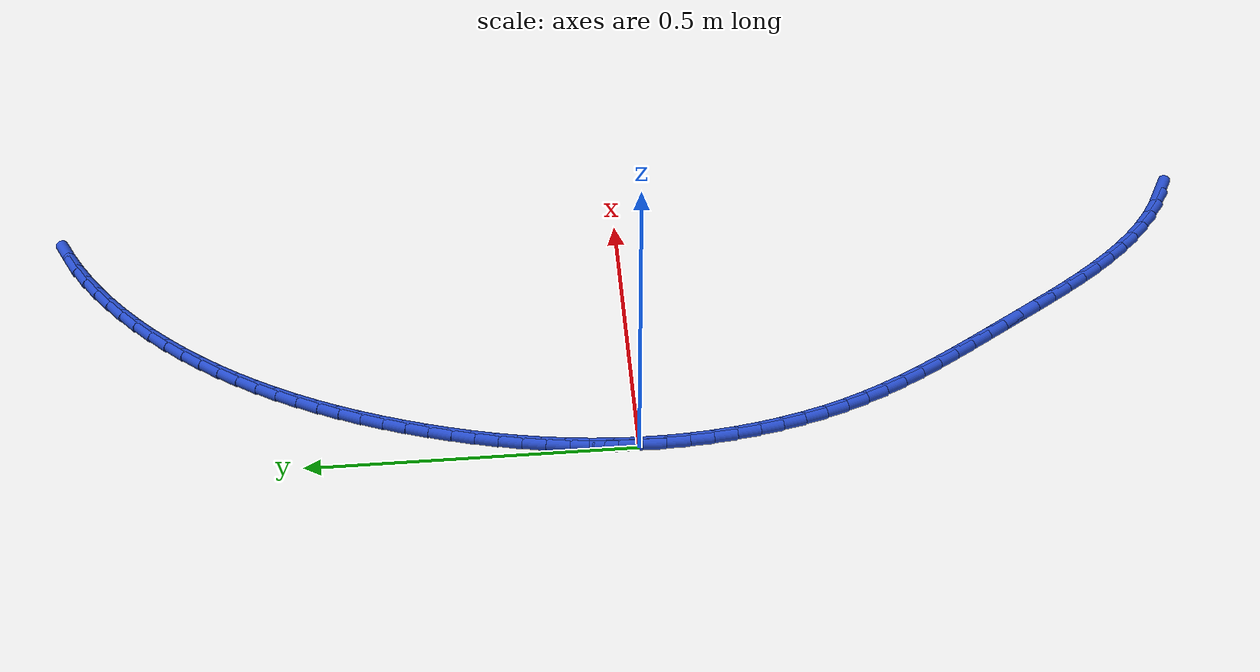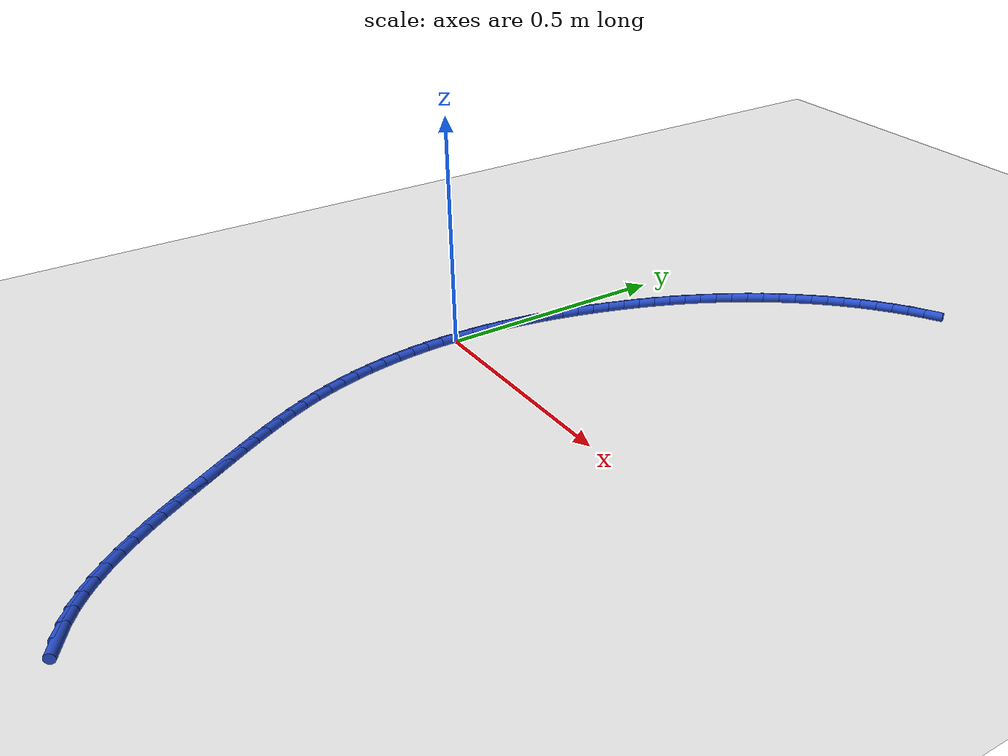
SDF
<sdf version="1.6">
 <world name="default">
  <model name="ground_plane">
   <static>1</static>
   <link name="link">
    <collision name="collision">
     <geometry><plane><normal>0 0 1</normal><size>100 100</size></plane></geometry>
     <surface><friction><ode><mu>100</mu><mu2>50</mu2></ode></friction></surface>
    </collision>
    <visual name="visual">
     <cast_shadows>0</cast_shadows>
     <geometry><plane><normal>0 0 1</normal><size>100 100</size></plane></geometry>
     <material>
      <script><uri>file://media/materials/scripts/gazebo.material</uri><name>Gazebo/WhiteGlow</name></script>
     </material>
    </visual>
   </link>
  </model>
  <model name="line">
   <link name="link_0">
    <pose>-1.734723475976807e-18 -2.7755575615628914e-17 0.01 0 1.57 1.539559376418958</pose>
    <collision name="collision">
     <geometry><cylinder><radius>0.01</radius><length>0.08</length></cylinder></geometry>
    </collision>
    <visual name="visual">
     <material>
      <script><name>Gazebo/Blue</name><uri>file://media/materials/scripts/gazebo.material</uri></script>
     </material>
     <geometry><cylinder><radius>0.01</radius><length>0.08</length></cylinder></geometry>
    </visual>
   </link>
   <link name="link_1">
    <pose>0.0011212247587142708 0.035882505950260844 0.01 0 1.57 1.5037378693080572</pose>
    <collision name="collision">
     <geometry><cylinder><radius>0.01</radius><length>0.08</length></cylinder></geometry>
    </collision>
    <visual name="visual">
     <material>
      <script><name>Gazebo/Blue</name><uri>file://media/materials/scripts/gazebo.material</uri></script>
     </material>
     <geometry><cylinder><radius>0.01</radius><length>0.08</length></cylinder></geometry>
    </visual>
   </link>
   <link name="link_2">
    <pose>0.003522147219864937 0.07163224758675368 0.01 0 1.57 1.4692266333694144</pose>
    <collision name="collision">
     <geometry><cylinder><radius>0.01</radius><length>0.08</length></cylinder></geometry>
    </collision>
    <visual name="visual">
     <material>
      <script><name>Gazebo/Blue</name><uri>file://media/materials/scripts/gazebo.material</uri></script>
     </material>
     <geometry><cylinder><radius>0.01</radius><length>0.08</length></cylinder></geometry>
    </visual>
   </link>
   <link name="link_3">
    <pose>0.007150616097195604 0.10723324807625588 0.01 0 1.57 1.4360542948428303</pose>
    <collision name="collision">
     <geometry><cylinder><radius>0.01</radius><length>0.08</length></cylinder></geometry>
    </collision>
    <visual name="visual">
     <material>
      <script><name>Gazebo/Blue</name><uri>file://media/materials/scripts/gazebo.material</uri></script>
     </material>
     <geometry><cylinder><radius>0.01</radius><length>0.08</length></cylinder></geometry>
    </visual>
   </link>
   <link name="link_4">
    <pose>0.011954480104449869 0.14266953058554477 0.01 0 1.57 1.4042356273516454</pose>
    <collision name="collision">
     <geometry><cylinder><radius>0.01</radius><length>0.08</length></cylinder></geometry>
    </collision>
    <visual name="visual">
     <material>
      <script><name>Gazebo/Blue</name><uri>file://media/materials/scripts/gazebo.material</uri></script>
     </material>
     <geometry><cylinder><radius>0.01</radius><length>0.08</length></cylinder></geometry>
    </visual>
   </link>
   <link name="link_5">
    <pose>0.01788158795537134 0.17792511828139784 0.01 0 1.57 1.3737733214924168</pose>
    <collision name="collision">
     <geometry><cylinder><radius>0.01</radius><length>0.08</length></cylinder></geometry>
    </collision>
    <visual name="visual">
     <material>
      <script><name>Gazebo/Blue</name><uri>file://media/materials/scripts/gazebo.material</uri></script>
     </material>
     <geometry><cylinder><radius>0.01</radius><length>0.08</length></cylinder></geometry>
    </visual>
   </link>
   <link name="link_6">
    <pose>0.024879788363703616 0.21298403433059243 0.01 0 1.57 1.3446597969579952</pose>
    <collision name="collision">
     <geometry><cylinder><radius>0.01</radius><length>0.08</length></cylinder></geometry>
    </collision>
    <visual name="visual">
     <material>
      <script><name>Gazebo/Blue</name><uri>file://media/materials/scripts/gazebo.material</uri></script>
     </material>
     <geometry><cylinder><radius>0.01</radius><length>0.08</length></cylinder></geometry>
    </visual>
   </link>
   <link name="link_7">
    <pose>0.032896930043190276 0.24783030189990585 0.01 0 1.57 1.3168789789214657</pose>
    <collision name="collision">
     <geometry><cylinder><radius>0.01</radius><length>0.08</length></cylinder></geometry>
    </collision>
    <visual name="visual">
     <material>
      <script><name>Gazebo/Blue</name><uri>file://media/materials/scripts/gazebo.material</uri></script>
     </material>
     <geometry><cylinder><radius>0.01</radius><length>0.08</length></cylinder></geometry>
    </visual>
   </link>
   <link name="link_8">
    <pose>0.041880861707574955 0.2824479441561156 0.01 0 1.57 1.2904079813819704</pose>
    <collision name="collision">
     <geometry><cylinder><radius>0.01</radius><length>0.08</length></cylinder></geometry>
    </collision>
    <visual name="visual">
     <material>
      <script><name>Gazebo/Blue</name><uri>file://media/materials/scripts/gazebo.material</uri></script>
     </material>
     <geometry><cylinder><radius>0.01</radius><length>0.08</length></cylinder></geometry>
    </visual>
   </link>
   <link name="link_9">
    <pose>0.051779432070601226 0.31682098426599903 0.01 0 1.57 1.265045279841749</pose>
    <collision name="collision">
     <geometry><cylinder><radius>0.01</radius><length>0.08</length></cylinder></geometry>
    </collision>
    <visual name="visual">
     <material>
      <script><name>Gazebo/Blue</name><uri>file://media/materials/scripts/gazebo.material</uri></script>
     </material>
     <geometry><cylinder><radius>0.01</radius><length>0.08</length></cylinder></geometry>
    </visual>
   </link>
   <link name="link_10">
    <pose>0.06254649449430036 0.35093186554985445 0.01 0 1.57 1.2393477576886034</pose>
    <collision name="collision">
     <geometry><cylinder><radius>0.01</radius><length>0.08</length></cylinder></geometry>
    </collision>
    <visual name="visual">
     <material>
      <script><name>Gazebo/Blue</name><uri>file://media/materials/scripts/gazebo.material</uri></script>
     </material>
     <geometry><cylinder><radius>0.01</radius><length>0.08</length></cylinder></geometry>
    </visual>
   </link>
   <link name="link_11">
    <pose>0.07418486073779572 0.38475015018198017 0.01 0 1.57 1.2126019413082774</pose>
    <collision name="collision">
     <geometry><cylinder><radius>0.01</radius><length>0.08</length></cylinder></geometry>
    </collision>
    <visual name="visual">
     <material>
      <script><name>Gazebo/Blue</name><uri>file://media/materials/scripts/gazebo.material</uri></script>
     </material>
     <geometry><cylinder><radius>0.01</radius><length>0.08</length></cylinder></geometry>
    </visual>
   </link>
   <link name="link_12">
    <pose>0.08672121574540793 0.4182391192081603 0.01 0 1.57 1.1847837191620307</pose>
    <collision name="collision">
     <geometry><cylinder><radius>0.01</radius><length>0.08</length></cylinder></geometry>
    </collision>
    <visual name="visual">
     <material>
      <script><name>Gazebo/Blue</name><uri>file://media/materials/scripts/gazebo.material</uri></script>
     </material>
     <geometry><cylinder><radius>0.01</radius><length>0.08</length></cylinder></geometry>
    </visual>
   </link>
   <link name="link_13">
    <pose>0.10018240520271063 0.45136201138252496 0.01 0 1.57 1.15587867154603</pose>
    <collision name="collision">
     <geometry><cylinder><radius>0.01</radius><length>0.08</length></cylinder></geometry>
    </collision>
    <visual name="visual">
     <material>
      <script><name>Gazebo/Blue</name><uri>file://media/materials/scripts/gazebo.material</uri></script>
     </material>
     <geometry><cylinder><radius>0.01</radius><length>0.08</length></cylinder></geometry>
    </visual>
   </link>
   <link name="link_14">
    <pose>0.11459527479527756 0.48408206545920524 0.01 0 1.57 1.1258784939448632</pose>
    <collision name="collision">
     <geometry><cylinder><radius>0.01</radius><length>0.08</length></cylinder></geometry>
    </collision>
    <visual name="visual">
     <material>
      <script><name>Gazebo/Blue</name><uri>file://media/materials/scripts/gazebo.material</uri></script>
     </material>
     <geometry><cylinder><radius>0.01</radius><length>0.08</length></cylinder></geometry>
    </visual>
   </link>
   <link name="link_15">
    <pose>0.12998667020868243 0.5163625201923318 0.01 0 1.57 1.094782118080417</pose>
    <collision name="collision">
     <geometry><cylinder><radius>0.01</radius><length>0.08</length></cylinder></geometry>
    </collision>
    <visual name="visual">
     <material>
      <script><name>Gazebo/Blue</name><uri>file://media/materials/scripts/gazebo.material</uri></script>
     </material>
     <geometry><cylinder><radius>0.01</radius><length>0.08</length></cylinder></geometry>
    </visual>
   </link>
   <link name="link_16">
    <pose>0.14638343712849897 0.5481666143360352 0.01 0 1.57 1.062596859016838</pose>
    <collision name="collision">
     <geometry><cylinder><radius>0.01</radius><length>0.08</length></cylinder></geometry>
    </collision>
    <visual name="visual">
     <material>
      <script><name>Gazebo/Blue</name><uri>file://media/materials/scripts/gazebo.material</uri></script>
     </material>
     <geometry><cylinder><radius>0.01</radius><length>0.08</length></cylinder></geometry>
    </visual>
   </link>
   <link name="link_17">
    <pose>0.16381242124030085 0.5794575866444461 0.01 0 1.57 1.0293395476816007</pose>
    <collision name="collision">
     <geometry><cylinder><radius>0.01</radius><length>0.08</length></cylinder></geometry>
    </collision>
    <visual name="visual">
     <material>
      <script><name>Gazebo/Blue</name><uri>file://media/materials/scripts/gazebo.material</uri></script>
     </material>
     <geometry><cylinder><radius>0.01</radius><length>0.08</length></cylinder></geometry>
    </visual>
   </link>
   <link name="link_18">
    <pose>0.18230046822966178 0.6101986758716953 0.01 0 1.57 0.9950375978235502</pose>
    <collision name="collision">
     <geometry><cylinder><radius>0.01</radius><length>0.08</length></cylinder></geometry>
    </collision>
    <visual name="visual">
     <material>
      <script><name>Gazebo/Blue</name><uri>file://media/materials/scripts/gazebo.material</uri></script>
     </material>
     <geometry><cylinder><radius>0.01</radius><length>0.08</length></cylinder></geometry>
    </visual>
   </link>
   <link name="link_19">
    <pose>0.20187442378215542 0.6403531207719132 0.01 0 1.57 0.9597320672533927</pose>
    <collision name="collision">
     <geometry><cylinder><radius>0.01</radius><length>0.08</length></cylinder></geometry>
    </collision>
    <visual name="visual">
     <material>
      <script><name>Gazebo/Blue</name><uri>file://media/materials/scripts/gazebo.material</uri></script>
     </material>
     <geometry><cylinder><radius>0.01</radius><length>0.08</length></cylinder></geometry>
    </visual>
   </link>
   <link name="link_20">
    <pose>0.22256081399075195 0.669883837109027 0.01 0 1.57 0.9235845779372743</pose>
    <collision name="collision">
     <geometry><cylinder><radius>0.01</radius><length>0.08</length></cylinder></geometry>
    </collision>
    <visual name="visual">
     <material>
      <script><name>Gazebo/Blue</name><uri>file://media/materials/scripts/gazebo.material</uri></script>
     </material>
     <geometry><cylinder><radius>0.01</radius><length>0.08</length></cylinder></geometry>
    </visual>
   </link>
   <link name="link_21">
    <pose>0.244364690070802 0.6987320374691689 0.01 0 1.57 0.8866937454770051</pose>
    <collision name="collision">
     <geometry><cylinder><radius>0.01</radius><length>0.08</length></cylinder></geometry>
    </collision>
    <visual name="visual">
     <material>
      <script><name>Gazebo/Blue</name><uri>file://media/materials/scripts/gazebo.material</uri></script>
     </material>
     <geometry><cylinder><radius>0.01</radius><length>0.08</length></cylinder></geometry>
    </visual>
   </link>
   <link name="link_22">
    <pose>0.26725642309423836 0.7268038856092353 0.01 0 1.57 0.8488897395789047</pose>
    <collision name="collision">
     <geometry><cylinder><radius>0.01</radius><length>0.08</length></cylinder></geometry>
    </collision>
    <visual name="visual">
     <material>
      <script><name>Gazebo/Blue</name><uri>file://media/materials/scripts/gazebo.material</uri></script>
     </material>
     <geometry><cylinder><radius>0.01</radius><length>0.08</length></cylinder></geometry>
    </visual>
   </link>
   <link name="link_23">
    <pose>0.2912032317909708 0.7540023594314411 0.01 0 1.57 0.8099839046036821</pose>
    <collision name="collision">
     <geometry><cylinder><radius>0.01</radius><length>0.08</length></cylinder></geometry>
    </collision>
    <visual name="visual">
     <material>
      <script><name>Gazebo/Blue</name><uri>file://media/materials/scripts/gazebo.material</uri></script>
     </material>
     <geometry><cylinder><radius>0.01</radius><length>0.08</length></cylinder></geometry>
    </visual>
   </link>
   <link name="link_24">
    <pose>0.31617233489090935 0.7802304368380025 0.01 0 1.57 0.7697897155766197</pose>
    <collision name="collision">
     <geometry><cylinder><radius>0.01</radius><length>0.08</length></cylinder></geometry>
    </collision>
    <visual name="visual">
     <material>
      <script><name>Gazebo/Blue</name><uri>file://media/materials/scripts/gazebo.material</uri></script>
     </material>
     <geometry><cylinder><radius>0.01</radius><length>0.08</length></cylinder></geometry>
    </visual>
   </link>
   <link name="link_25">
    <pose>0.34213095112396363 0.8053910957311339 0.01 0 1.57 0.7281236111264333</pose>
    <collision name="collision">
     <geometry><cylinder><radius>0.01</radius><length>0.08</length></cylinder></geometry>
    </collision>
    <visual name="visual">
     <material>
      <script><name>Gazebo/Blue</name><uri>file://media/materials/scripts/gazebo.material</uri></script>
     </material>
     <geometry><cylinder><radius>0.01</radius><length>0.08</length></cylinder></geometry>
    </visual>
   </link>
   <link name="link_26">
    <pose>0.36904629922004384 0.8293873140130511 0.01 0 1.57 0.6848067717463668</pose>
    <collision name="collision">
     <geometry><cylinder><radius>0.01</radius><length>0.08</length></cylinder></geometry>
    </collision>
    <visual name="visual">
     <material>
      <script><name>Gazebo/Blue</name><uri>file://media/materials/scripts/gazebo.material</uri></script>
     </material>
     <geometry><cylinder><radius>0.01</radius><length>0.08</length></cylinder></geometry>
    </visual>
   </link>
   <link name="link_27">
    <pose>0.39688559790905975 0.8521220695859691 0.01 0 1.57 0.639668017552806</pose>
    <collision name="collision">
     <geometry><cylinder><radius>0.01</radius><length>0.08</length></cylinder></geometry>
    </collision>
    <visual name="visual">
     <material>
      <script><name>Gazebo/Blue</name><uri>file://media/materials/scripts/gazebo.material</uri></script>
     </material>
     <geometry><cylinder><radius>0.01</radius><length>0.08</length></cylinder></geometry>
    </visual>
   </link>
   <link name="link_28">
    <pose>0.4256160659209209 0.8734983403521029 0.01 0 1.57 0.592548005027577</pose>
    <collision name="collision">
     <geometry><cylinder><radius>0.01</radius><length>0.08</length></cylinder></geometry>
    </collision>
    <visual name="visual">
     <material>
      <script><name>Gazebo/Blue</name><uri>file://media/materials/scripts/gazebo.material</uri></script>
     </material>
     <geometry><cylinder><radius>0.01</radius><length>0.08</length></cylinder></geometry>
    </visual>
   </link>
   <link name="link_29">
    <pose>0.45520492198553775 0.8934191042136685 0.01 0 1.57 0.543304878671618</pose>
    <collision name="collision">
     <geometry><cylinder><radius>0.01</radius><length>0.08</length></cylinder></geometry>
    </collision>
    <visual name="visual">
     <material>
      <script><name>Gazebo/Blue</name><uri>file://media/materials/scripts/gazebo.material</uri></script>
     </material>
     <geometry><cylinder><radius>0.01</radius><length>0.08</length></cylinder></geometry>
    </visual>
   </link>
   <link name="link_30">
    <pose>0.48561938483281963 0.9117873390728806 0.01 0 1.57 0.49193047307201054</pose>
    <collision name="collision">
     <geometry><cylinder><radius>0.01</radius><length>0.08</length></cylinder></geometry>
    </collision>
    <visual name="visual">
     <material>
      <script><name>Gazebo/Blue</name><uri>file://media/materials/scripts/gazebo.material</uri></script>
     </material>
     <geometry><cylinder><radius>0.01</radius><length>0.08</length></cylinder></geometry>
    </visual>
   </link>
   <link name="link_159">
    <pose>0.5028106479784571 -0.951499100621283 0.01 0 1.57 -0.5307743729468608</pose>
    <collision name="collision">
     <geometry><cylinder><radius>0.01</radius><length>0.08</length></cylinder></geometry>
    </collision>
    <visual name="visual">
     <material>
      <script><name>Gazebo/Blue</name><uri>file://media/materials/scripts/gazebo.material</uri></script>
     </material>
     <geometry><cylinder><radius>0.01</radius><length>0.08</length></cylinder></geometry>
    </visual>
   </link>
   <link name="link_160">
    <pose>0.4731015431318094 -0.9340611127954048 0.01 0 1.57 -0.6164099828778187</pose>
    <collision name="collision">
     <geometry><cylinder><radius>0.01</radius><length>0.08</length></cylinder></geometry>
    </collision>
    <visual name="visual">
     <material>
      <script><name>Gazebo/Blue</name><uri>file://media/materials/scripts/gazebo.material</uri></script>
     </material>
     <geometry><cylinder><radius>0.01</radius><length>0.08</length></cylinder></geometry>
    </visual>
   </link>
   <link name="link_161">
    <pose>0.4449609717327569 -0.9141234304022932 0.01 0 1.57 -0.6935205725106799</pose>
    <collision name="collision">
     <geometry><cylinder><radius>0.01</radius><length>0.08</length></cylinder></geometry>
    </collision>
    <visual name="visual">
     <material>
      <script><name>Gazebo/Blue</name><uri>file://media/materials/scripts/gazebo.material</uri></script>
     </material>
     <geometry><cylinder><radius>0.01</radius><length>0.08</length></cylinder></geometry>
    </visual>
   </link>
   <link name="link_162">
    <pose>0.41826105890784826 -0.8919285379929162 0.01 0 1.57 -0.7615573112717348</pose>
    <collision name="collision">
     <geometry><cylinder><radius>0.01</radius><length>0.08</length></cylinder></geometry>
    </collision>
    <visual name="visual">
     <material>
      <script><name>Gazebo/Blue</name><uri>file://media/materials/scripts/gazebo.material</uri></script>
     </material>
     <geometry><cylinder><radius>0.01</radius><length>0.08</length></cylinder></geometry>
    </visual>
   </link>
   <link name="link_163">
    <pose>0.3928718894514751 -0.8677219966162459 0.01 0 1.57 -0.8205421943312708</pose>
    <collision name="collision">
     <geometry><cylinder><radius>0.01</radius><length>0.08</length></cylinder></geometry>
    </collision>
    <visual name="visual">
     <material>
      <script><name>Gazebo/Blue</name><uri>file://media/materials/scripts/gazebo.material</uri></script>
     </material>
     <geometry><cylinder><radius>0.01</radius><length>0.08</length></cylinder></geometry>
    </visual>
   </link>
   <link name="link_164">
    <pose>0.3686635481580293 -0.8417493673212535 0.01 0 1.57 -0.8707907445472873</pose>
    <collision name="collision">
     <geometry><cylinder><radius>0.01</radius><length>0.08</length></cylinder></geometry>
    </collision>
    <visual name="visual">
     <material>
      <script><name>Gazebo/Blue</name><uri>file://media/materials/scripts/gazebo.material</uri></script>
     </material>
     <geometry><cylinder><radius>0.01</radius><length>0.08</length></cylinder></geometry>
    </visual>
   </link>
   <link name="link_165">
    <pose>0.34550611982190277 -0.8142562111569116 0.01 0 1.57 -0.912765871219849</pose>
    <collision name="collision">
     <geometry><cylinder><radius>0.01</radius><length>0.08</length></cylinder></geometry>
    </collision>
    <visual name="visual">
     <material>
      <script><name>Gazebo/Blue</name><uri>file://media/materials/scripts/gazebo.material</uri></script>
     </material>
     <geometry><cylinder><radius>0.01</radius><length>0.08</length></cylinder></geometry>
    </visual>
   </link>
   <link name="link_166">
    <pose>0.32326968923748745 -0.7854880891721917 0.01 0 1.57 -0.9469693742471497</pose>
    <collision name="collision">
     <geometry><cylinder><radius>0.01</radius><length>0.08</length></cylinder></geometry>
    </collision>
    <visual name="visual">
     <material>
      <script><name>Gazebo/Blue</name><uri>file://media/materials/scripts/gazebo.material</uri></script>
     </material>
     <geometry><cylinder><radius>0.01</radius><length>0.08</length></cylinder></geometry>
    </visual>
   </link>
   <link name="link_167">
    <pose>0.3018243411991741 -0.7556905624160642 0.01 0 1.57 -0.9738690553464466</pose>
    <collision name="collision">
     <geometry><cylinder><radius>0.01</radius><length>0.08</length></cylinder></geometry>
    </collision>
    <visual name="visual">
     <material>
      <script><name>Gazebo/Blue</name><uri>file://media/materials/scripts/gazebo.material</uri></script>
     </material>
     <geometry><cylinder><radius>0.01</radius><length>0.08</length></cylinder></geometry>
    </visual>
   </link>
   <link name="link_168">
    <pose>0.28104016050135533 -0.7251091919375025 0.01 0 1.57 -0.9938530911374486</pose>
    <collision name="collision">
     <geometry><cylinder><radius>0.01</radius><length>0.08</length></cylinder></geometry>
    </collision>
    <visual name="visual">
     <material>
      <script><name>Gazebo/Blue</name><uri>file://media/materials/scripts/gazebo.material</uri></script>
     </material>
     <geometry><cylinder><radius>0.01</radius><length>0.08</length></cylinder></geometry>
    </visual>
   </link>
   <link name="link_169">
    <pose>0.2607872319384225 -0.6939895387854771 0.01 0 1.57 -1.0072025459399414</pose>
    <collision name="collision">
     <geometry><cylinder><radius>0.01</radius><length>0.08</length></cylinder></geometry>
    </collision>
    <visual name="visual">
     <material>
      <script><name>Gazebo/Blue</name><uri>file://media/materials/scripts/gazebo.material</uri></script>
     </material>
     <geometry><cylinder><radius>0.01</radius><length>0.08</length></cylinder></geometry>
    </visual>
   </link>
   <link name="link_170">
    <pose>0.24093564030476747 -0.6625771640089602 0.01 0 1.57 -1.0140744703821167</pose>
    <collision name="collision">
     <geometry><cylinder><radius>0.01</radius><length>0.08</length></cylinder></geometry>
    </collision>
    <visual name="visual">
     <material>
      <script><name>Gazebo/Blue</name><uri>file://media/materials/scripts/gazebo.material</uri></script>
     </material>
     <geometry><cylinder><radius>0.01</radius><length>0.08</length></cylinder></geometry>
    </visual>
   </link>
   <link name="link_171">
    <pose>0.22135547039478198 -0.6311176286569236 0.01 0 1.57 -1.014679369503475</pose>
    <collision name="collision">
     <geometry><cylinder><radius>0.01</radius><length>0.08</length></cylinder></geometry>
    </collision>
    <visual name="visual">
     <material>
      <script><name>Gazebo/Blue</name><uri>file://media/materials/scripts/gazebo.material</uri></script>
     </material>
     <geometry><cylinder><radius>0.01</radius><length>0.08</length></cylinder></geometry>
    </visual>
   </link>
   <link name="link_172">
    <pose>0.20192135954193838 -0.5998506230717092 0.01 0 1.57 -1.014234036147105</pose>
    <collision name="collision">
     <geometry><cylinder><radius>0.01</radius><length>0.08</length></cylinder></geometry>
    </collision>
    <visual name="visual">
     <material>
      <script><name>Gazebo/Blue</name><uri>file://media/materials/scripts/gazebo.material</uri></script>
     </material>
     <geometry><cylinder><radius>0.01</radius><length>0.08</length></cylinder></geometry>
    </visual>
   </link>
   <link name="link_173">
    <pose>0.1826349534597386 -0.5688520545010854 0.01 0 1.57 -1.0186616612159958</pose>
    <collision name="collision">
     <geometry><cylinder><radius>0.01</radius><length>0.08</length></cylinder></geometry>
    </collision>
    <visual name="visual">
     <material>
      <script><name>Gazebo/Blue</name><uri>file://media/materials/scripts/gazebo.material</uri></script>
     </material>
     <geometry><cylinder><radius>0.01</radius><length>0.08</length></cylinder></geometry>
    </visual>
   </link>
   <link name="link_174">
    <pose>0.16363868921725222 -0.5380162733231248 0.01 0 1.57 -1.0283845864052077</pose>
    <collision name="collision">
     <geometry><cylinder><radius>0.01</radius><length>0.08</length></cylinder></geometry>
    </collision>
    <visual name="visual">
     <material>
      <script><name>Gazebo/Blue</name><uri>file://media/materials/scripts/gazebo.material</uri></script>
     </material>
     <geometry><cylinder><radius>0.01</radius><length>0.08</length></cylinder></geometry>
    </visual>
   </link>
   <link name="link_175">
    <pose>0.14508232219322678 -0.5072281926220303 0.01 0 1.57 -1.0435034737197626</pose>
    <collision name="collision">
     <geometry><cylinder><radius>0.01</radius><length>0.08</length></cylinder></geometry>
    </collision>
    <visual name="visual">
     <material>
      <script><name>Gazebo/Blue</name><uri>file://media/materials/scripts/gazebo.material</uri></script>
     </material>
     <geometry><cylinder><radius>0.01</radius><length>0.08</length></cylinder></geometry>
    </visual>
   </link>
   <link name="link_176">
    <pose>0.12711560776640984 -0.4763727254820049 0.01 0 1.57 -1.064091674863924</pose>
    <collision name="collision">
     <geometry><cylinder><radius>0.01</radius><length>0.08</length></cylinder></geometry>
    </collision>
    <visual name="visual">
     <material>
      <script><name>Gazebo/Blue</name><uri>file://media/materials/scripts/gazebo.material</uri></script>
     </material>
     <geometry><cylinder><radius>0.01</radius><length>0.08</length></cylinder></geometry>
    </visual>
   </link>
   <link name="link_177">
    <pose>0.1098883013155491 -0.44533478498725143 0.01 0 1.57 -1.0901803434534625</pose>
    <collision name="collision">
     <geometry><cylinder><radius>0.01</radius><length>0.08</length></cylinder></geometry>
    </collision>
    <visual name="visual">
     <material>
      <script><name>Gazebo/Blue</name><uri>file://media/materials/scripts/gazebo.material</uri></script>
     </material>
     <geometry><cylinder><radius>0.01</radius><length>0.08</length></cylinder></geometry>
    </visual>
   </link>
   <link name="link_178">
    <pose>0.09355015821939212 -0.41399928422197313 0.01 0 1.57 -1.1217386036699806</pose>
    <collision name="collision">
     <geometry><cylinder><radius>0.01</radius><length>0.08</length></cylinder></geometry>
    </collision>
    <visual name="visual">
     <material>
      <script><name>Gazebo/Blue</name><uri>file://media/materials/scripts/gazebo.material</uri></script>
     </material>
     <geometry><cylinder><radius>0.01</radius><length>0.08</length></cylinder></geometry>
    </visual>
   </link>
   <link name="link_179">
    <pose>0.07825093385668681 -0.3822511362703735 0.01 0 1.57 -1.1586498213820555</pose>
    <collision name="collision">
     <geometry><cylinder><radius>0.01</radius><length>0.08</length></cylinder></geometry>
    </collision>
    <visual name="visual">
     <material>
      <script><name>Gazebo/Blue</name><uri>file://media/materials/scripts/gazebo.material</uri></script>
     </material>
     <geometry><cylinder><radius>0.01</radius><length>0.08</length></cylinder></geometry>
    </visual>
   </link>
   <link name="link_180">
    <pose>0.06414038360618017 -0.34997525421665415 0.01 0 1.57 -1.2006731906843315</pose>
    <collision name="collision">
     <geometry><cylinder><radius>0.01</radius><length>0.08</length></cylinder></geometry>
    </collision>
    <visual name="visual">
     <material>
      <script><name>Gazebo/Blue</name><uri>file://media/materials/scripts/gazebo.material</uri></script>
     </material>
     <geometry><cylinder><radius>0.01</radius><length>0.08</length></cylinder></geometry>
    </visual>
   </link>
   <link name="link_181">
    <pose>0.05136793126574151 -0.3170569723027999 0.01 0 1.57 -1.2455713811196976</pose>
    <collision name="collision">
     <geometry><cylinder><radius>0.01</radius><length>0.08</length></cylinder></geometry>
    </collision>
    <visual name="visual">
     <material>
      <script><name>Gazebo/Blue</name><uri>file://media/materials/scripts/gazebo.material</uri></script>
     </material>
     <geometry><cylinder><radius>0.01</radius><length>0.08</length></cylinder></geometry>
    </visual>
   </link>
   <link name="link_182">
    <pose>0.040033754459216454 -0.2834441748474592 0.01 0 1.57 -1.2893560788795013</pose>
    <collision name="collision">
     <geometry><cylinder><radius>0.01</radius><length>0.08</length></cylinder></geometry>
    </collision>
    <visual name="visual">
     <material>
      <script><name>Gazebo/Blue</name><uri>file://media/materials/scripts/gazebo.material</uri></script>
     </material>
     <geometry><cylinder><radius>0.01</radius><length>0.08</length></cylinder></geometry>
    </visual>
   </link>
   <link name="link_183">
    <pose>0.030137038264915303 -0.24921302195092396 0.01 0 1.57 -1.331700783317787</pose>
    <collision name="collision">
     <geometry><cylinder><radius>0.01</radius><length>0.08</length></cylinder></geometry>
    </collision>
    <visual name="visual">
     <material>
      <script><name>Gazebo/Blue</name><uri>file://media/materials/scripts/gazebo.material</uri></script>
     </material>
     <geometry><cylinder><radius>0.01</radius><length>0.08</length></cylinder></geometry>
    </visual>
   </link>
   <link name="link_184">
    <pose>0.021664581229896663 -0.21445540647841163 0.01 0 1.57 -1.3727734585283955</pose>
    <collision name="collision">
     <geometry><cylinder><radius>0.01</radius><length>0.08</length></cylinder></geometry>
    </collision>
    <visual name="visual">
     <material>
      <script><name>Gazebo/Blue</name><uri>file://media/materials/scripts/gazebo.material</uri></script>
     </material>
     <geometry><cylinder><radius>0.01</radius><length>0.08</length></cylinder></geometry>
    </visual>
   </link>
   <link name="link_185">
    <pose>0.014603181901219162 -0.1792632212951398 0.01 0 1.57 -1.4127457359720503</pose>
    <collision name="collision">
     <geometry><cylinder><radius>0.01</radius><length>0.08</length></cylinder></geometry>
    </collision>
    <visual name="visual">
     <material>
      <script><name>Gazebo/Blue</name><uri>file://media/materials/scripts/gazebo.material</uri></script>
     </material>
     <geometry><cylinder><radius>0.01</radius><length>0.08</length></cylinder></geometry>
    </visual>
   </link>
   <link name="link_186">
    <pose>0.008939638825941499 -0.14372835926632663 0.01 0 1.57 -1.4517913572937287</pose>
    <collision name="collision">
     <geometry><cylinder><radius>0.01</radius><length>0.08</length></cylinder></geometry>
    </collision>
    <visual name="visual">
     <material>
      <script><name>Gazebo/Blue</name><uri>file://media/materials/scripts/gazebo.material</uri></script>
     </material>
     <geometry><cylinder><radius>0.01</radius><length>0.08</length></cylinder></geometry>
    </visual>
   </link>
   <link name="link_187">
    <pose>0.004660750551122061 -0.10794271325718804 0.01 0 1.57 -1.4900853439602557</pose>
    <collision name="collision">
     <geometry><cylinder><radius>0.01</radius><length>0.08</length></cylinder></geometry>
    </collision>
    <visual name="visual">
     <material>
      <script><name>Gazebo/Blue</name><uri>file://media/materials/scripts/gazebo.material</uri></script>
     </material>
     <geometry><cylinder><radius>0.01</radius><length>0.08</length></cylinder></geometry>
    </visual>
   </link>
   <link name="link_188">
    <pose>0.0017533156238195898 -0.07199817613294243 0.01 0 1.57 -1.5278037574465078</pose>
    <collision name="collision">
     <geometry><cylinder><radius>0.01</radius><length>0.08</length></cylinder></geometry>
    </collision>
    <visual name="visual">
     <material>
      <script><name>Gazebo/Blue</name><uri>file://media/materials/scripts/gazebo.material</uri></script>
     </material>
     <geometry><cylinder><radius>0.01</radius><length>0.08</length></cylinder></geometry>
    </visual>
   </link>
   <link name="link_189">
    <pose>0.00020413259109269746 -0.03598664075880725 0.01 0 1.57 -1.5651239328901008</pose>
    <collision name="collision">
     <geometry><cylinder><radius>0.01</radius><length>0.08</length></cylinder></geometry>
    </collision>
    <visual name="visual">
     <material>
      <script><name>Gazebo/Blue</name><uri>file://media/materials/scripts/gazebo.material</uri></script>
     </material>
     <geometry><cylinder><radius>0.01</radius><length>0.08</length></cylinder></geometry>
    </visual>
   </link>
   <link name="link_190">
    <pose>2.6020852139652106e-18 1.3877787807814457e-17 0.01 0 1.57 1.5393675652282701</pose>
    <collision name="collision">
     <geometry><cylinder><radius>0.01</radius><length>0.08</length></cylinder></geometry>
    </collision>
    <visual name="visual">
     <material>
      <script><name>Gazebo/Blue</name><uri>file://media/materials/scripts/gazebo.material</uri></script>
     </material>
     <geometry><cylinder><radius>0.01</radius><length>0.08</length></cylinder></geometry>
    </visual>
   </link>
   <link name="link_191">
    <pose>0.0011277163976001134 0.03586985327826182 0.01 0 1.57 1.5393675652282701</pose>
    <collision name="collision">
     <geometry><cylinder><radius>0.01</radius><length>0.08</length></cylinder></geometry>
    </collision>
    <visual name="visual">
     <material>
      <script><name>Gazebo/Blue</name><uri>file://media/materials/scripts/gazebo.material</uri></script>
     </material>
     <geometry><cylinder><radius>0.01</radius><length>0.08</length></cylinder></geometry>
    </visual>
   </link>
  </model>
 </world>
</sdf>
